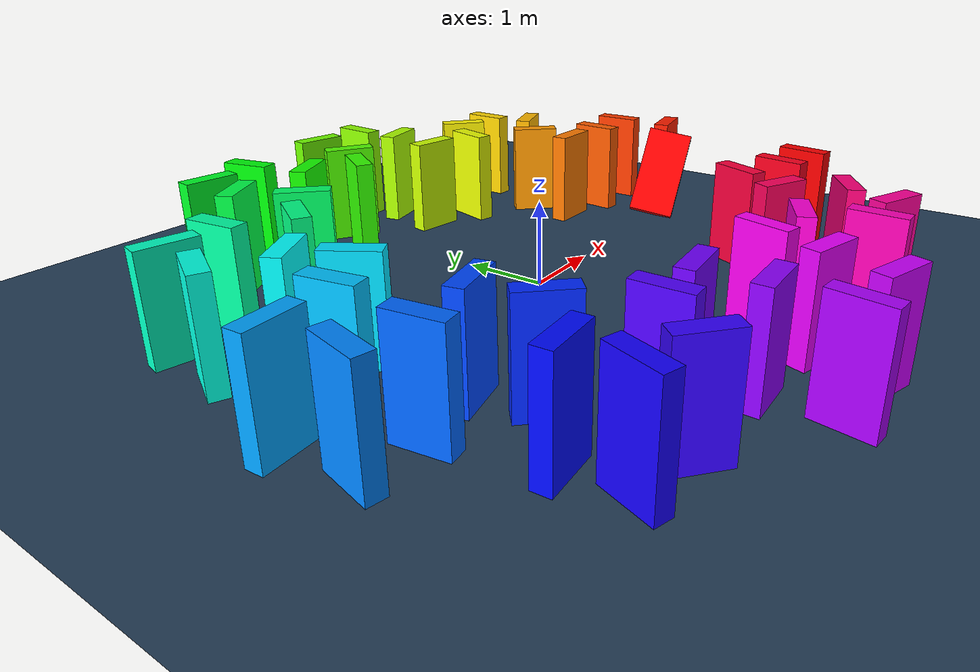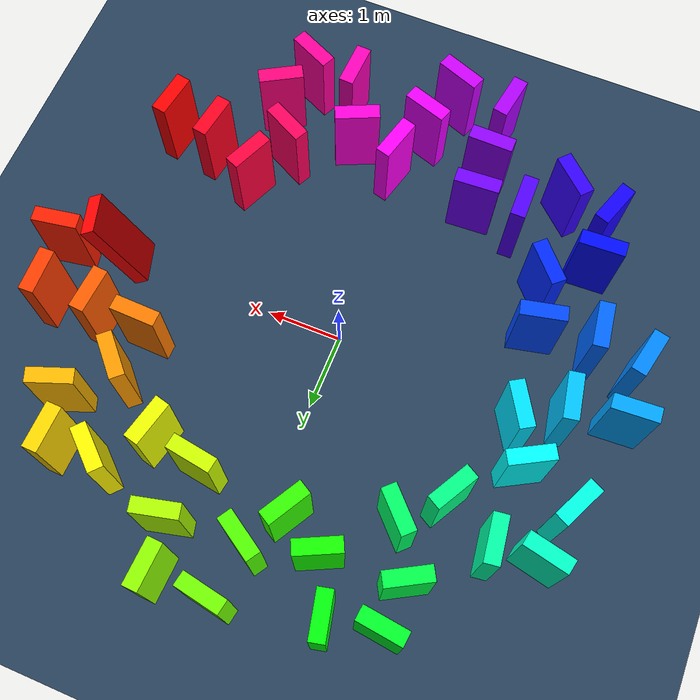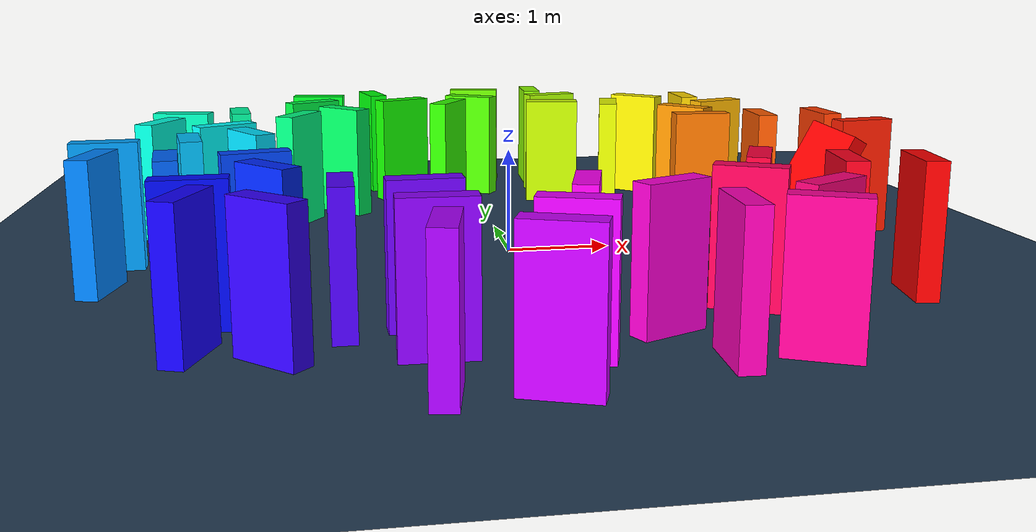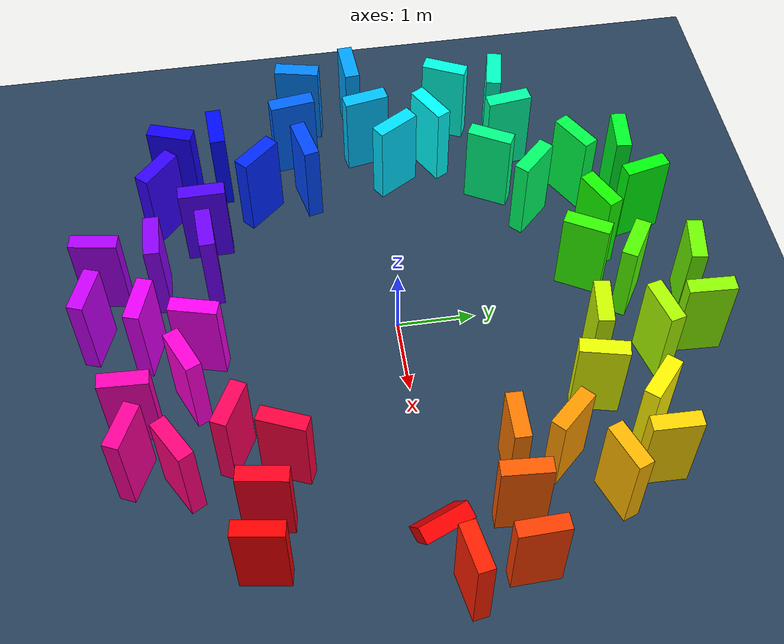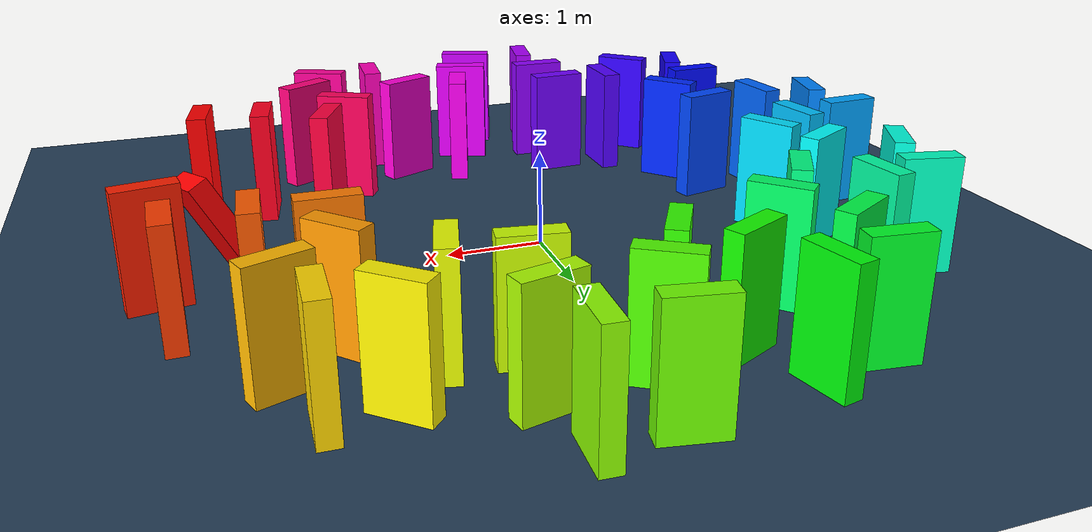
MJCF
<mujoco>
  <visual>
    <headlight diffuse="0.6 0.6 0.6" ambient="0.1 0.1 0.1" specular="0 0 0"/>
    <rgba haze="0.15 0.25 0.35 1"/>
    <global azimuth="120" elevation="-20"/>
  </visual>
  <asset>
    <texture type="skybox" builtin="gradient" rgb1="0.3 0.5 0.7" rgb2="0 0 0" width="512" height="3072"/>
    <texture type="2d" name="groundplane" builtin="checker" mark="edge" rgb1="0.2 0.3 0.4" rgb2="0.1 0.2 0.3" markrgb="0.8 0.8 0.8" width="300" height="300"/>
    <material name="groundplane" texture="groundplane" texuniform="true" texrepeat="5 5" reflectance="0.2"/>
  </asset>
  <worldbody>
    <light pos="0 0 1.5" dir="0 0 -1" directional="true"/>
    <geom name="floor" size="0 0 0.05" type="plane" material="groundplane"/>
    <body name="trigger" pos="3.1500 0.0000 0.5767" euler="0 28.0 21.0">
      <geom type="box" size="0.1000 0.3000 0.6000" rgba="1.000 0.000 0.000 1"/>
      <freejoint/>
    </body>
    <body name="domino_001" pos="3.7889 0.2456 0.6000" euler="0 0.0 99.8">
      <geom type="box" size="0.1000 0.3000 0.6000" rgba="1.000 0.120 0.000 1"/>
      <freejoint/>
    </body>
    <body name="domino_002" pos="3.6617 0.9820 0.6000" euler="0 0.0 -178.5">
      <geom type="box" size="0.1000 0.3000 0.6000" rgba="1.000 0.240 0.000 1"/>
      <freejoint/>
    </body>
    <body name="domino_003" pos="2.9488 0.9629 0.6000" euler="0 0.0 176.0">
      <geom type="box" size="0.1000 0.3000 0.6000" rgba="1.000 0.360 0.000 1"/>
      <freejoint/>
    </body>
    <body name="domino_004" pos="2.2876 1.0091 0.6000" euler="0 0.0 88.6">
      <geom type="box" size="0.1000 0.3000 0.6000" rgba="1.000 0.480 0.000 1"/>
      <freejoint/>
    </body>
    <body name="domino_005" pos="2.3032 1.6349 0.6000" euler="0 0.0 42.6">
      <geom type="box" size="0.1000 0.3000 0.6000" rgba="1.000 0.600 0.000 1"/>
      <freejoint/>
    </body>
    <body name="domino_006" pos="2.8551 2.1423 0.6000" euler="0 0.0 110.2">
      <geom type="box" size="0.1000 0.3000 0.6000" rgba="1.000 0.720 0.000 1"/>
      <freejoint/>
    </body>
    <body name="domino_007" pos="2.6356 2.7373 0.6000" euler="0 0.0 178.4">
      <geom type="box" size="0.1000 0.3000 0.6000" rgba="1.000 0.840 0.000 1"/>
      <freejoint/>
    </body>
    <body name="domino_008" pos="2.0398 2.7543 0.6000" euler="0 0.0 -132.1">
      <geom type="box" size="0.1000 0.3000 0.6000" rgba="1.000 0.960 0.000 1"/>
      <freejoint/>
    </body>
    <body name="domino_009" pos="1.5366 2.1982 0.6000" euler="0 0.0 166.4">
      <geom type="box" size="0.1000 0.3000 0.6000" rgba="0.920 1.000 0.000 1"/>
      <freejoint/>
    </body>
    <body name="domino_010" pos="0.8842 2.3565 0.6000" euler="0 0.0 81.5">
      <geom type="box" size="0.1000 0.3000 0.6000" rgba="0.800 1.000 0.000 1"/>
      <freejoint/>
    </body>
    <body name="domino_011" pos="0.9937 3.0892 0.6000" euler="0 0.0 103.6">
      <geom type="box" size="0.1000 0.3000 0.6000" rgba="0.680 1.000 0.000 1"/>
      <freejoint/>
    </body>
    <body name="domino_012" pos="0.8450 3.7043 0.6000" euler="0 0.0 177.2">
      <geom type="box" size="0.1000 0.3000 0.6000" rgba="0.560 1.000 0.000 1"/>
      <freejoint/>
    </body>
    <body name="domino_013" pos="0.1166 3.7404 0.6000" euler="0 0.0 -100.1">
      <geom type="box" size="0.1000 0.3000 0.6000" rgba="0.440 1.000 0.000 1"/>
      <freejoint/>
    </body>
    <body name="domino_014" pos="-0.0135 3.0069 0.6000" euler="0 0.0 -122.2">
      <geom type="box" size="0.1000 0.3000 0.6000" rgba="0.320 1.000 0.000 1"/>
      <freejoint/>
    </body>
    <body name="domino_015" pos="-0.3477 2.4758 0.6000" euler="0 0.0 150.1">
      <geom type="box" size="0.1000 0.3000 0.6000" rgba="0.200 1.000 0.000 1"/>
      <freejoint/>
    </body>
    <body name="domino_016" pos="-0.8815 2.7832 0.6000" euler="0 0.0 115.7">
      <geom type="box" size="0.1000 0.3000 0.6000" rgba="0.080 1.000 0.000 1"/>
      <freejoint/>
    </body>
    <body name="domino_017" pos="-1.2064 3.4580 0.6000" euler="0 0.0 -167.2">
      <geom type="box" size="0.1000 0.3000 0.6000" rgba="0.000 1.000 0.040 1"/>
      <freejoint/>
    </body>
    <body name="domino_018" pos="-1.8726 3.3064 0.6000" euler="0 0.0 -96.7">
      <geom type="box" size="0.1000 0.3000 0.6000" rgba="0.000 1.000 0.160 1"/>
      <freejoint/>
    </body>
    <body name="domino_019" pos="-1.9432 2.7073 0.6000" euler="0 0.0 -60.7">
      <geom type="box" size="0.1000 0.3000 0.6000" rgba="0.000 1.000 0.280 1"/>
      <freejoint/>
    </body>
    <body name="domino_020" pos="-1.5766 2.0536 0.6000" euler="0 0.0 -135.6">
      <geom type="box" size="0.1000 0.3000 0.6000" rgba="0.000 1.000 0.400 1"/>
      <freejoint/>
    </body>
    <body name="domino_021" pos="-2.0609 1.5792 0.6000" euler="0 0.0 150.6">
      <geom type="box" size="0.1000 0.3000 0.6000" rgba="0.000 1.000 0.520 1"/>
      <freejoint/>
    </body>
    <body name="domino_022" pos="-2.7140 1.9470 0.6000" euler="0 0.0 -172.3">
      <geom type="box" size="0.1000 0.3000 0.6000" rgba="0.000 1.000 0.640 1"/>
      <freejoint/>
    </body>
    <body name="domino_023" pos="-3.3102 1.8659 0.6000" euler="0 0.0 -102.0">
      <geom type="box" size="0.1000 0.3000 0.6000" rgba="0.000 1.000 0.760 1"/>
      <freejoint/>
    </body>
    <body name="domino_024" pos="-3.4517 1.2019 0.6000" euler="0 0.0 -25.6">
      <geom type="box" size="0.1000 0.3000 0.6000" rgba="0.000 1.000 0.880 1"/>
      <freejoint/>
    </body>
    <body name="domino_025" pos="-2.7761 0.8785 0.6000" euler="0 0.0 -60.9">
      <geom type="box" size="0.1000 0.3000 0.6000" rgba="0.000 1.000 1.000 1"/>
      <freejoint/>
    </body>
    <body name="domino_026" pos="-2.4768 0.3400 0.6000" euler="0 0.0 -148.7">
      <geom type="box" size="0.1000 0.3000 0.6000" rgba="0.000 0.880 1.000 1"/>
      <freejoint/>
    </body>
    <body name="domino_027" pos="-3.0145 0.0128 0.6000" euler="0 0.0 -169.6">
      <geom type="box" size="0.1000 0.3000 0.6000" rgba="0.000 0.760 1.000 1"/>
      <freejoint/>
    </body>
    <body name="domino_028" pos="-3.7464 -0.1215 0.6000" euler="0 0.0 -86.6">
      <geom type="box" size="0.1000 0.3000 0.6000" rgba="0.000 0.640 1.000 1"/>
      <freejoint/>
    </body>
    <body name="domino_029" pos="-3.7025 -0.8525 0.6000" euler="0 0.0 -12.7">
      <geom type="box" size="0.1000 0.3000 0.6000" rgba="0.000 0.520 1.000 1"/>
      <freejoint/>
    </body>
    <body name="domino_030" pos="-3.0817 -0.9921 0.6000" euler="0 0.0 8.0">
      <geom type="box" size="0.1000 0.3000 0.6000" rgba="0.000 0.400 1.000 1"/>
      <freejoint/>
    </body>
    <body name="domino_031" pos="-2.3507 -0.8893 0.6000" euler="0 0.0 -77.3">
      <geom type="box" size="0.1000 0.3000 0.6000" rgba="0.000 0.280 1.000 1"/>
      <freejoint/>
    </body>
    <body name="domino_032" pos="-2.2037 -1.5421 0.6000" euler="0 0.0 -137.9">
      <geom type="box" size="0.1000 0.3000 0.6000" rgba="0.000 0.160 1.000 1"/>
      <freejoint/>
    </body>
    <body name="domino_033" pos="-2.7599 -2.0452 0.6000" euler="0 0.0 -87.3">
      <geom type="box" size="0.1000 0.3000 0.6000" rgba="0.000 0.040 1.000 1"/>
      <freejoint/>
    </body>
    <body name="domino_034" pos="-2.7319 -2.6412 0.6000" euler="0 0.0 -19.3">
      <geom type="box" size="0.1000 0.3000 0.6000" rgba="0.080 0.000 1.000 1"/>
      <freejoint/>
    </body>
    <body name="domino_035" pos="-2.1366 -2.8499 0.6000" euler="0 0.0 47.5">
      <geom type="box" size="0.1000 0.3000 0.6000" rgba="0.200 0.000 1.000 1"/>
      <freejoint/>
    </body>
    <body name="domino_036" pos="-1.6297 -2.2975 0.6000" euler="0 0.0 0.6">
      <geom type="box" size="0.1000 0.3000 0.6000" rgba="0.320 0.000 1.000 1"/>
      <freejoint/>
    </body>
    <body name="domino_037" pos="-1.0020 -2.2907 0.6000" euler="0 0.0 -86.8">
      <geom type="box" size="0.1000 0.3000 0.6000" rgba="0.440 0.000 1.000 1"/>
      <freejoint/>
    </body>
    <body name="domino_038" pos="-0.9646 -2.9563 0.6000" euler="0 0.0 -90.8">
      <geom type="box" size="0.1000 0.3000 0.6000" rgba="0.560 0.000 1.000 1"/>
      <freejoint/>
    </body>
    <body name="domino_039" pos="-0.9751 -3.6650 0.6000" euler="0 0.0 -9.5">
      <geom type="box" size="0.1000 0.3000 0.6000" rgba="0.680 0.000 1.000 1"/>
      <freejoint/>
    </body>
    <body name="domino_040" pos="-0.2379 -3.7889 0.6000" euler="0 0.0 69.7">
      <geom type="box" size="0.1000 0.3000 0.6000" rgba="0.800 0.000 1.000 1"/>
      <freejoint/>
    </body>
    <body name="domino_041" pos="0.0007 -3.1423 0.6000" euler="0 0.0 72.0">
      <geom type="box" size="0.1000 0.3000 0.6000" rgba="0.920 0.000 1.000 1"/>
      <freejoint/>
    </body>
    <body name="domino_042" pos="0.2125 -2.4917 0.6000" euler="0 0.0 -15.2">
      <geom type="box" size="0.1000 0.3000 0.6000" rgba="1.000 0.000 0.960 1"/>
      <freejoint/>
    </body>
    <body name="domino_043" pos="0.8265 -2.6588 0.6000" euler="0 0.0 -65.7">
      <geom type="box" size="0.1000 0.3000 0.6000" rgba="1.000 0.000 0.840 1"/>
      <freejoint/>
    </body>
    <body name="domino_044" pos="1.1356 -3.3419 0.6000" euler="0 0.0 -2.7">
      <geom type="box" size="0.1000 0.3000 0.6000" rgba="1.000 0.000 0.720 1"/>
      <freejoint/>
    </body>
    <body name="domino_045" pos="1.7531 -3.3714 0.6000" euler="0 0.0 64.9">
      <geom type="box" size="0.1000 0.3000 0.6000" rgba="1.000 0.000 0.600 1"/>
      <freejoint/>
    </body>
    <body name="domino_046" pos="2.0080 -2.8269 0.6000" euler="0 0.0 119.9">
      <geom type="box" size="0.1000 0.3000 0.6000" rgba="1.000 0.000 0.480 1"/>
      <freejoint/>
    </body>
    <body name="domino_047" pos="1.6347 -2.1765 0.6000" euler="0 0.0 62.9">
      <geom type="box" size="0.1000 0.3000 0.6000" rgba="1.000 0.000 0.360 1"/>
      <freejoint/>
    </body>
    <body name="domino_048" pos="1.9342 -1.5911 0.6000" euler="0 0.0 -23.5">
      <geom type="box" size="0.1000 0.3000 0.6000" rgba="1.000 0.000 0.240 1"/>
      <freejoint/>
    </body>
    <body name="domino_049" pos="2.5960 -1.8794 0.6000" euler="0 0.0 -9.1">
      <geom type="box" size="0.1000 0.3000 0.6000" rgba="1.000 0.000 0.120 1"/>
      <freejoint/>
    </body>
    <body name="domino_050" pos="3.2405 -1.9827 0.6000" euler="0 0.0 -9.1">
      <geom type="box" size="0.1000 0.3000 0.6000" rgba="1.000 0.000 0.000 1"/>
      <freejoint/>
    </body>
  </worldbody>
</mujoco>
